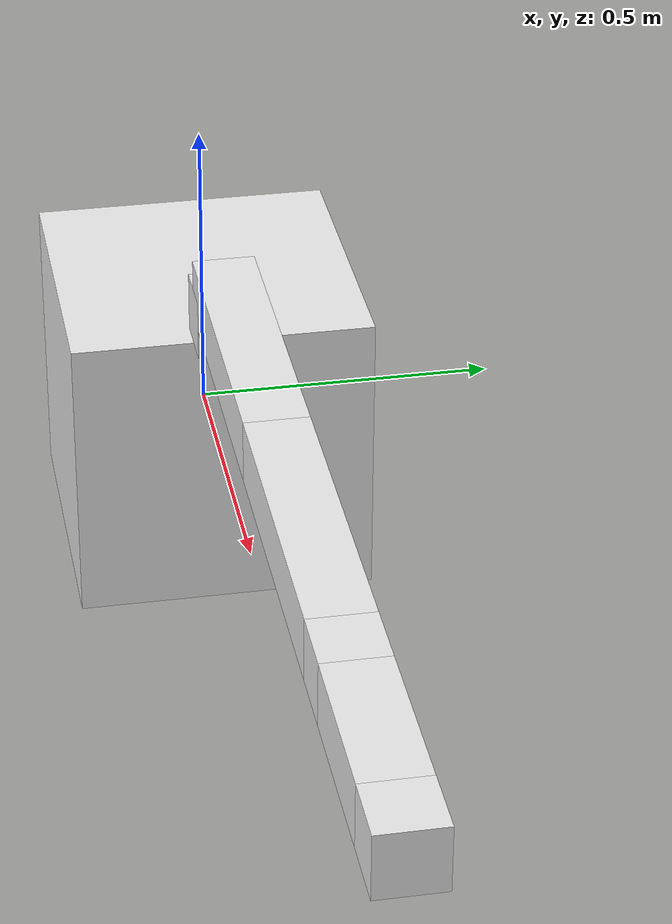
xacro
<robot name="single_arm_robot" xmlns:xacro="http://ros.org/wiki/xacro">
  <!-- robot shape and phisics -->
  <xacro:include filename="$(find orbital_robot_simulation)/description/urdf/sar_core.xacro" />

  <!-- gazebo pulgin -->
  <xacro:include filename="$(find orbital_robot_simulation)/description/gazebo/sar_gazebo.xacro" />

  <!-- ros2 control plugin -->
  <xacro:include filename="$(find orbital_robot_simulation)/description/ros2_control/sar_ros2_control.xacro" />

</robot>

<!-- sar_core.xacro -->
<!-- import xacro reffering here https://gbiggs.github.io/rosjp_urdf_tutorial_text/manipulator_urdf.html -->
<robot xmlns:xacro="http://ros.org/wiki/xacro">
  <xacro:include filename="$(find orbital_robot_simulation)/description/urdf/sar_materials.xacro"/>
  <xacro:include filename="$(find orbital_robot_simulation)/description/urdf/inertial_macros.xacro"/>
  <xacro:include filename="$(find orbital_robot_simulation)/description/urdf/sar_properties.xacro"/>

  <!-- Base Link -->
  <link name="base_link">
    <visual>
      <origin xyz="0 0 0" rpy="0 0 0"/>
      <geometry>
        <box size="${BASE_X} ${BASE_Y} ${BASE_Z}"/>
      </geometry>
      <material name="white"/>
    </visual>
    <collision>
      <origin xyz="0 0 0" rpy="0 0 0"/>
      <geometry>
        <box size="${BASE_X} ${BASE_Y} ${BASE_Z}"/>
      </geometry>
    </collision>
    <xacro:inertial_box mass="${BASE_MASS}" x="${BASE_X/2}" y="${BASE_Y/2}" z="${BASE_Z/2}">
      <origin xyz="0 0 0" rpy="0 0 0"/>
    </xacro:inertial_box>
  </link>

  <!-- Joint 1 -->
  <joint name="joint_a" type="revolute">
    <parent link="base_link"/>
    <child link="link_1"/>
    <origin xyz="${BASE_X/2} 0 ${BASE_Z/2}" rpy="0 0 0"/>
    <axis xyz="0 0 1"/>
    <position>1</position>
    <limit lower="${JOINT_1_LOWER}" upper="${JOINT_1_UPPER}"
      effort="${JOINT_1_EFFORT}" velocity="${JOINT_1_VELOCITY}"/>
  </joint>

  <!-- Link 1 -->
  <link name="link_1">
    <visual>
      <origin xyz="0 0 ${LINK_1_Z/2}" rpy="0 0 0"/>
      <geometry>
        <box size="${LINK_1_X} ${LINK_1_Y} ${LINK_1_Z}"/>
      </geometry>
      <material name="white"/>
    </visual>
    <collision>
      <origin xyz="0 0 ${LINK_1_Z/2}" rpy="0 0 0"/>
      <geometry>
        <box size="${LINK_1_X} ${LINK_1_Y} ${LINK_1_Z}"/>
      </geometry>
    </collision>
    <xacro:inertial_box mass="${LINK_1_MASS}" x="${LINK_1_X/2}" y="${LINK_1_Y/2}" z="${LINK_1_Z/2}">
      <origin xyz="0 0 ${LINK_1_Z/2}" rpy="0 0 0"/>
    </xacro:inertial_box>
  </link>

  <!-- Joint 2 -->
  <joint name="joint_b" type="revolute">
    <parent link="link_1"/>
    <child link="link_2"/>
    <origin xyz="0 0 ${LINK_1_Z}" rpy="0 0 0"/>
    <axis xyz="0 1 0"/>
    <limit lower="${JOINT_2_LOWER}" upper="${JOINT_2_UPPER}"
      effort="${JOINT_2_EFFORT}" velocity="${JOINT_2_VELOCITY}"/>
  </joint>

  <!-- Link 2 -->
  <link name="link_2">
    <visual>
      <origin xyz="${LINK_2_X/2} 0 0" rpy="0 0 0"/>
      <geometry>
        <box size="${LINK_2_X} ${LINK_2_Y} ${LINK_2_Z}"/>
      </geometry>
      <material name="white"/>
    </visual>
    <collision>
      <origin xyz="${LINK_2_X/2} 0 0" rpy="0 0 0"/>
      <geometry>
        <box size="${LINK_2_X} ${LINK_2_Y} ${LINK_2_Z}"/>
      </geometry>
    </collision>
    <xacro:inertial_box mass="${LINK_2_MASS}" x="${LINK_2_X/2}" y="${LINK_2_Y/2}" z="${LINK_2_Z/2}">
      <origin xyz="${LINK_2_X/2} 0 0" rpy="0 0 0"/>
    </xacro:inertial_box>
  </link>

  <!-- Joint 3 -->
  <joint name="joint_c" type="revolute">
    <parent link="link_2"/>
    <child link="link_3"/>
    <origin xyz="${LINK_2_X} 0 0" rpy="0 0 0"/>
    <axis xyz="0 1 0"/>
    <limit lower="${JOINT_3_LOWER}" upper="${JOINT_3_UPPER}"
      effort="${JOINT_3_EFFORT}" velocity="${JOINT_3_VELOCITY}"/>
  </joint>

  <!-- Link 3 -->
  <link name="link_3">
    <visual>
      <origin xyz="${LINK_3_X/2} 0 0" rpy="0 0 0"/>
      <geometry>
        <box size="${LINK_3_X} ${LINK_3_Y} ${LINK_3_Z}"/>
      </geometry>
      <material name="white"/>
    </visual>
    <collision>
      <origin xyz="${LINK_3_X/2} 0 0" rpy="0 0 0"/>
      <geometry>
        <box size="${LINK_3_X} ${LINK_3_Y} ${LINK_3_Z}"/>
      </geometry>
    </collision>
    <xacro:inertial_box mass="${LINK_3_MASS}" x="${LINK_3_X/2}" y="${LINK_3_Y/2}" z="${LINK_3_Z/2}">
      <origin xyz="${LINK_3_X/2} 0 0" rpy="0 0 0"/>
    </xacro:inertial_box>
  </link>

  <!-- Joint 4 -->
  <joint name="joint_d" type="revolute">
    <parent link="link_3"/>
    <child link="link_4"/>
    <origin xyz="${LINK_3_X} 0 0" rpy="0 0 0"/>
    <axis xyz="1 0 0"/>
    <limit lower="${JOINT_4_LOWER}" upper="${JOINT_4_UPPER}"
      effort="${JOINT_4_EFFORT}" velocity="${JOINT_4_VELOCITY}"/>
  </joint>

  <!-- Link 4 -->
  <link name="link_4">
    <visual>
      <origin xyz="${LINK_4_X/2} 0 0" rpy="0 0 0"/>
      <geometry>
        <box size="${LINK_4_X} ${LINK_4_Y} ${LINK_4_Z}"/>
      </geometry>
      <material name="white"/>
    </visual>
    <collision>
      <origin xyz="${LINK_4_X/2} 0 0" rpy="0 0 0"/>
      <geometry>
        <box size="${LINK_4_X} ${LINK_4_Y} ${LINK_4_Z}"/>
      </geometry>
    </collision>
    <xacro:inertial_box mass="${LINK_4_MASS}" x="${LINK_4_X/2}" y="${LINK_4_Y/2}" z="${LINK_4_Z/2}">
      <origin xyz="${LINK_4_X/2} 0 0" rpy="0 0 0"/>
    </xacro:inertial_box>
  </link>

  <!-- Joint 5 -->
  <joint name="joint_e" type="revolute">
    <parent link="link_4"/>
    <child link="link_5"/>
    <origin xyz="${LINK_4_X} 0 0" rpy="0 0 0"/>
    <axis xyz="0 1 0"/>
    <limit lower="${JOINT_5_LOWER}" upper="${JOINT_5_UPPER}"
      effort="${JOINT_5_EFFORT}" velocity="${JOINT_5_VELOCITY}"/>
  </joint>

  <!-- Link 5 -->
  <link name="link_5">
    <visual>
      <origin xyz="${LINK_5_X/2} 0 0" rpy="0 0 0"/>
      <geometry>
        <box size="${LINK_5_X} ${LINK_5_Y} ${LINK_5_Z}"/>
      </geometry>
      <material name="white"/>
    </visual>
    <collision>
      <origin xyz="${LINK_5_X/2} 0 0" rpy="0 0 0"/>
      <geometry>
        <box size="${LINK_5_X} ${LINK_5_Y} ${LINK_5_Z}"/>
      </geometry>
    </collision>
    <xacro:inertial_box mass="${LINK_5_MASS}" x="${LINK_5_X/2}" y="${LINK_5_Y/2}" z="${LINK_5_Z/2}">
      <origin xyz="${LINK_5_X/2} 0 0" rpy="0 0 0"/>
    </xacro:inertial_box>
  </link>

  <!-- Joint 6 -->
  <joint name="joint_f" type="revolute">
    <parent link="link_5"/>
    <child link="link_6"/>
    <origin xyz="${LINK_5_X} 0 0" rpy="0 0 0"/>
    <axis xyz="0 0 1"/>
    <limit lower="${JOINT_6_LOWER}" upper="${JOINT_6_UPPER}"
      effort="${JOINT_6_EFFORT}" velocity="${JOINT_6_VELOCITY}"/>
  </joint>

  <link name="link_6">
  <visual>
    <origin xyz="${LINK_6_X/2} 0 0" rpy="0 0 0"/>
    <geometry>
      <box size="${LINK_6_X} ${LINK_6_Y} ${LINK_6_Z}"/>
    </geometry>
    <material name="white"/>
  </visual>
  <collision>
    <origin xyz="${LINK_6_X/2} 0 0" rpy="0 0 0"/>
    <geometry>
      <box size="${LINK_6_X} ${LINK_6_Y} ${LINK_6_Z}"/>
    </geometry>
  </collision>
  <xacro:inertial_box mass="${LINK_6_MASS}" x="${LINK_6_X/2}" y="${LINK_6_Y/2}" z="${LINK_6_Z/2}">
    <origin xyz="${LINK_6_X/2} 0 0" rpy="0 0 0"/>
  </xacro:inertial_box>
</link>

</robot>

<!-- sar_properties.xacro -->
<robot xmlns:xacro="http://ros.org/wiki/xacro">

  <xacro:property name="PI" value="3.1415926535"/>

  <xacro:property name="BASE_X" value="0.5"/>
  <xacro:property name="BASE_Y" value="0.5"/>
  <xacro:property name="BASE_Z" value="0.5"/>
  <xacro:property name="BASE_MASS" value="50"/>
  <xacro:property name="BASE_INERTIA_Z" value="0.13526810"/>

  <xacro:property name="JOINT_1_LOWER" value="-${PI}"/>
  <xacro:property name="JOINT_1_UPPER" value=" ${PI}"/>
  <xacro:property name="JOINT_1_EFFORT" value="20"/>
  <xacro:property name="JOINT_1_VELOCITY" value="${PI}"/>

  <xacro:property name="LINK_1_X" value="0.1"/>
  <xacro:property name="LINK_1_Y" value="0.1"/>
  <xacro:property name="LINK_1_Z" value="0.1"/>
  <xacro:property name="LINK_1_MASS" value="1.0"/>
  <xacro:property name="LINK_1_INERTIA_Z" value="0.00255150"/>

  <xacro:property name="JOINT_2_LOWER" value="-${PI}"/>
  <xacro:property name="JOINT_2_UPPER" value=" ${PI}"/>
  <xacro:property name="JOINT_2_EFFORT" value="20"/>
  <xacro:property name="JOINT_2_VELOCITY" value="${PI}"/>

  <xacro:property name="LINK_2_X" value="0.5"/>
  <xacro:property name="LINK_2_Y" value="0.1"/>
  <xacro:property name="LINK_2_Z" value="0.1"/>
  <xacro:property name="LINK_2_MASS" value="1.0"/>
  <xacro:property name="LINK_2_INERTIA_Z" value="0.00118507"/>

  <xacro:property name="JOINT_3_LOWER" value="-${PI}"/>
  <xacro:property name="JOINT_3_UPPER" value=" ${PI}"/>
  <xacro:property name="JOINT_3_EFFORT" value="20"/>
  <xacro:property name="JOINT_3_VELOCITY" value="${PI}"/>

  <xacro:property name="LINK_3_X" value="0.5"/>
  <xacro:property name="LINK_3_Y" value="0.1"/>
  <xacro:property name="LINK_3_Z" value="0.1"/>
  <xacro:property name="LINK_3_MASS" value="1.0"/>
  <xacro:property name="LINK_3_INERTIA_Z" value="0.00128210"/>

  <xacro:property name="JOINT_4_LOWER" value="-${PI}"/>
  <xacro:property name="JOINT_4_UPPER" value=" ${PI}"/>
  <xacro:property name="JOINT_4_EFFORT" value="20"/>
  <xacro:property name="JOINT_4_VELOCITY" value="${PI}"/>

  <xacro:property name="LINK_4_X" value="0.1"/>
  <xacro:property name="LINK_4_Y" value="0.1"/>
  <xacro:property name="LINK_4_Z" value="0.1"/>
  <xacro:property name="LINK_4_MASS" value="1.0"/>
  <xacro:property name="LINK_4_INERTIA_Z" value="0.00128210"/>

  <xacro:property name="JOINT_5_LOWER" value="-${PI}"/>
  <xacro:property name="JOINT_5_UPPER" value=" ${PI}"/>
  <xacro:property name="JOINT_5_EFFORT" value="20"/>
  <xacro:property name="JOINT_5_VELOCITY" value="${PI}"/>

  <xacro:property name="LINK_5_X" value="0.25"/>
  <xacro:property name="LINK_5_Y" value="0.1"/>
  <xacro:property name="LINK_5_Z" value="0.1"/>
  <xacro:property name="LINK_5_MASS" value="0.5"/>
  <xacro:property name="LINK_5_INERTIA_Z" value="0.00128210"/>

  <xacro:property name="JOINT_6_LOWER" value="-${PI}"/>
  <xacro:property name="JOINT_6_UPPER" value=" ${PI}"/>
  <xacro:property name="JOINT_6_EFFORT" value="20"/>
  <xacro:property name="JOINT_6_VELOCITY" value="${PI}"/>

  <xacro:property name="LINK_6_X" value="0.1"/>
  <xacro:property name="LINK_6_Y" value="0.1"/>
  <xacro:property name="LINK_6_Z" value="0.1"/>
  <xacro:property name="LINK_6_MASS" value="0.5"/>
  <xacro:property name="LINK_6_INERTIA_Z" value="0.00128210"/>

  <xacro:property name="TARGET_X" value="0.5"/>
  <xacro:property name="TARGET_Y" value="0.5"/>
  <xacro:property name="TARGET_Z" value="0.5"/>
  <xacro:property name="TARGET_MASS" value="5.0"/>

</robot>
